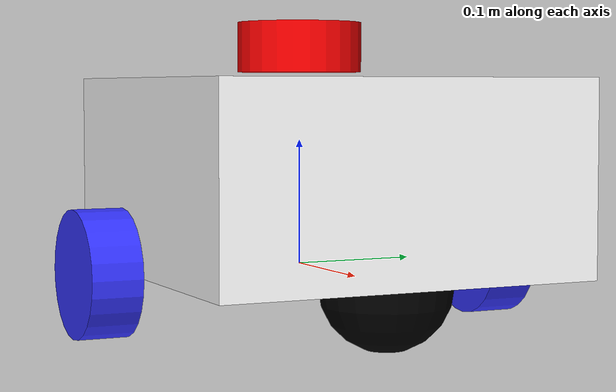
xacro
<?xml version="1.0"?>
<robot xmlns:xacro="http://www.ros.org/wiki/xacro"  name="robot">

    <xacro:include filename="robot_core.xacro" />

     <xacro:include filename="ros2_control.xacro" />
    <xacro:include filename="lidar.xacro" />
</robot>

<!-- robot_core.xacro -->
<robot xmlns:xacro="http://www.ros.org/wiki/xacro" >

    <xacro:include filename="inertial_macros.xacro" />

    <material name="white">
        <color rgba="1 1 1 1" />
    </material>
    <material name="orange">
        <color rgba="1 0.3 0.1 1" />
    </material>
    <material name="blue">
        <color rgba="0.2 0.2 1 1" />
    </material>
    <material name="black">
        <color rgba="0 0 0 1" />
    </material>

    <!-- Base link-->
    <link name="base_link" >

    </link>

    <!--  chassis link-->
    <joint name="chassis_joint" type="fixed">
        <parent link="base_link" />
        <child link="chassis" />
        <origin xyz="-0.1 0 0" />
    </joint>

    <link name="chassis">
        <visual>
            <origin xyz="0.15 0 0.075" />
            <geometry>
                <box size="0.3 0.3 0.15" />
            </geometry>
            <material name="white" />
        </visual>

        <collision>
            <origin xyz="0.15 0 0.075" />
            <geometry>
                <box size="0.3 0.3 0.15" />
            </geometry>
        </collision>
        <xacro:inertial_box mass="0.5" x="0.3" y="0.3" z="0.15">
            <origin xyz="0.15 0 0.075" rpy="0 0 0"/>
        </xacro:inertial_box>
    </link>

    <gazebo reference="chassis">
        <material>Gazebo/White</material>
    </gazebo>

    <!--  Left wheel link -->
    <joint name="left_wheel_joint" type="continuous" >
        <parent link="base_link" />
        <child link="left_wheel_link" />
        <origin xyz="0 0.175 0" rpy="-${pi/2} 0 0"/>
        <axis xyz="0 0 1" />
    </joint>

    <link name="left_wheel_link">
        <visual>
            <geometry>
                <cylinder radius="0.05" length="0.04" />
            </geometry>
            <material name="blue" />
        </visual>
        <collision>
            <geometry>
                <cylinder radius="0.05" length="0.04" />
            </geometry>
        </collision>
        <xacro:inertial_cylinder mass="0.1" length="0.04" radius="0.05">
            <origin xyz="0 0 0" rpy="0 0 0"/>
        </xacro:inertial_cylinder>
    </link>

    <gazebo reference="left_wheel_link">
        <material>Gazebo/Blue</material>
    </gazebo>
    <!--  Right wheel link -->
    <joint name="right_wheel_joint" type="continuous" >
        <parent link="base_link" />
        <child link="right_wheel_link" />
        <origin xyz="0 -0.17 0" rpy="${pi/2} 0 0"/>
        <axis xyz="0 0 -1" />
    </joint>

    <link name="right_wheel_link">
        <visual>
            <geometry>
                <cylinder radius="0.05" length="0.04" />
            </geometry>
            <material name="blue" />
        </visual>
        <collision>
            <geometry>
                <cylinder radius="0.05" length="0.04" />
            </geometry>
        </collision>
        <xacro:inertial_cylinder mass="0.1" length="0.04" radius="0.05">
            <origin xyz="0 0 0" rpy="0 0 0"/>
        </xacro:inertial_cylinder>
    </link>

    <gazebo reference="right_wheel_link">
        <material>Gazebo/Blue</material>
    </gazebo>

    <!-- Caster wheel link -->

    <joint name="caster_wheel_joint" type="fixed" >
        <parent link="base_link" />
        <child link="caster_wheel_link" />
        <origin xyz="0.15 0 0" />
    </joint>

    <link name="caster_wheel_link" >
        <visual>
            <geometry>
                <sphere radius="0.05"  />
            </geometry>
            <material name="black" />
        </visual>
        <collision>
            <geometry>
                <sphere radius="0.05" />
            </geometry>
        </collision>
        <xacro:inertial_sphere mass="0.1" radius="0.05">
            <origin xyz="0 0 0" rpy="0 0 0"/>
        </xacro:inertial_sphere>
    </link>

    <gazebo reference="caster_wheel_link">
        <material>Gazebo/Black</material>
        <!--  set friction coff to almost zero -->
        <mu1 value="0.001" />
        <mu2 value="0.001" />
    </gazebo>

</robot>

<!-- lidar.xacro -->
<robot xmlns:xacro="http://www.ros.org/wiki/xacro">
    <!--  add a joint and a link for our lidar -->
    <joint name="laser_joint" type="fixed">
        <parent link="chassis"/>
        <child link="laser_frame"/>
        <origin xyz="0.1 0 0.175" rpy="0 0 0"/>
    </joint>

    <link name="laser_frame" >
        <!-- represent the lidar by a clyinder -->
        <visual>
            <geometry>
                <cylinder length="0.04" radius="0.05"/>
            </geometry>
            <material name="red">
                <color rgba="1 0 0 1"/>
            </material>
        </visual>
        <collision>
            <geometry>
                <cylinder length="0.04" radius="0.05"/>
            </geometry>
        </collision>
        <xacro:inertial_cylinder mass="0.1" length="0.04" radius="0.05">
            <origin xyz="0 0 0" rpy="0 0 0"/>
        </xacro:inertial_cylinder>
    </link>

    <gazebo reference="laser_frame">
        <sensor name="lidar" type="gpu_lidar">
            <always_on>true</always_on>
            <visualize>true</visualize>
            <pose >0 0 0 0 0 0</pose>
            <!--  the topic in which lidar data will be published update_rate is frequency -->
            <topic>scan</topic>
            <update_rate>5</update_rate>
            <lidar>
                <scan>
                    <!--  properties of horizontal and vertical laser rays-->
                    <horizontal>
                        <!--  samples: number of lidar rays per cycle-->
                        <samples>360</samples>
                        <resolution>1.00000</resolution>
                        <min_angle>-3.14</min_angle>
                        <max_angle>3.14</max_angle>
                    </horizontal>
                </scan>
                <range>
                    <min>0.1</min>
                    <max>10.0</max>
                    <resolution>0.01</resolution>
                </range>
            </lidar>

            <gz_frame_id>laser_frame</gz_frame_id>
        </sensor>
    </gazebo>

</robot>
